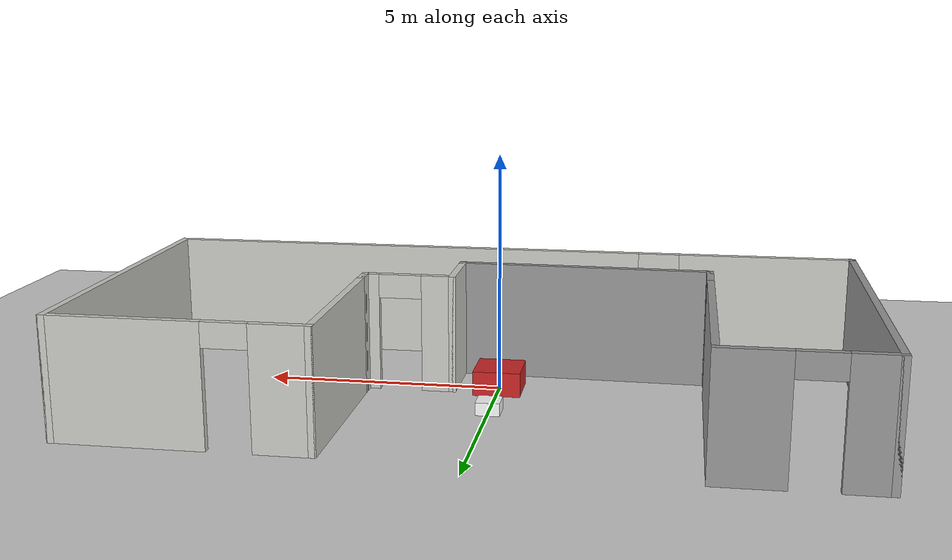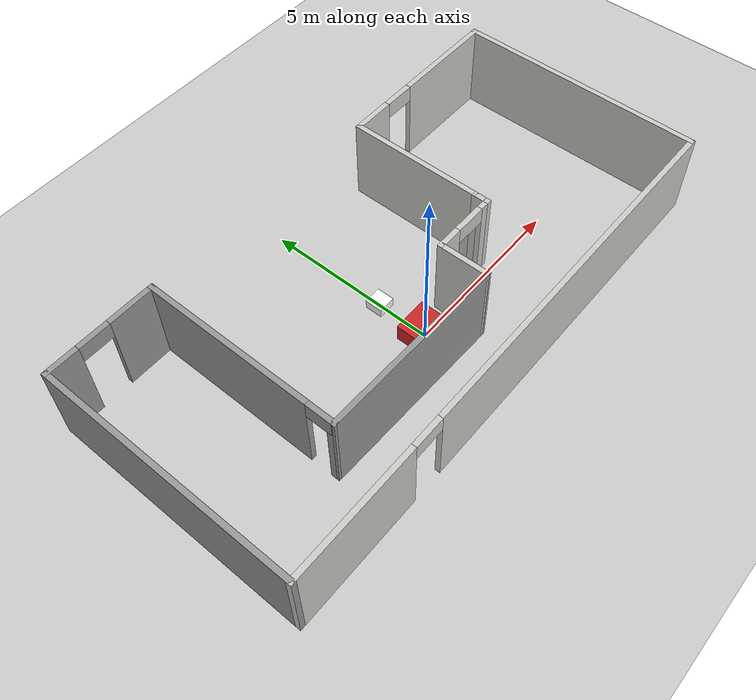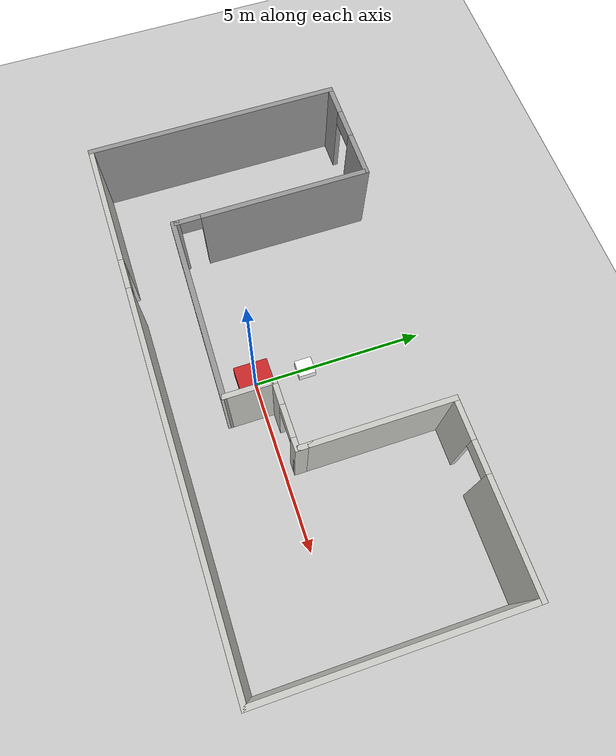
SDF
<sdf version="1.7">
 <world name="default">
  <light name="sun" type="directional">
   <pose>0 0 10 0 -0 0</pose>
   <diffuse>0.8 0.8 0.8 1</diffuse>
   <specular>0.2 0.2 0.2 1</specular>
   <attenuation>
    <range>1000</range>
    <constant>0.9</constant>
    <linear>0.01</linear>
    <quadratic>0.001</quadratic>
   </attenuation>
   <direction>-0.5 0.1 -0.9</direction>
   <spot><inner_angle>0</inner_angle><outer_angle>0</outer_angle><falloff>0</falloff></spot>
  </light>
  <model name="ground_plane">
   <static>1</static>
   <link name="link">
    <collision name="collision">
     <geometry><plane><normal>0 0 1</normal><size>100 100</size></plane></geometry>
     <surface>
      <contact><collide_bitmask>65535</collide_bitmask></contact>
      <friction><ode><mu>100</mu><mu2>50</mu2></ode></friction>
     </surface>
    </collision>
    <visual name="visual">
     <cast_shadows>0</cast_shadows>
     <geometry><plane><normal>0 0 1</normal><size>100 100</size></plane></geometry>
     <material>
      <script><uri>file://media/materials/scripts/gazebo.material</uri><name>Gazebo/Grey</name></script>
     </material>
    </visual>
   </link>
  </model>
  <gravity>0 0 -9.8</gravity>
  <magnetic_field>6e-06 2.3e-05 -4.2e-05</magnetic_field>
  <atmosphere type="adiabatic"/>
  <physics type="ode">
   <max_step_size>0.001</max_step_size>
   <real_time_factor>1</real_time_factor>
   <real_time_update_rate>1000</real_time_update_rate>
  </physics>
  <scene><ambient>0.4 0.4 0.4 1</ambient><background>0.7 0.7 0.7 1</background><shadows>1</shadows></scene>
  <spherical_coordinates>
   <surface_model>EARTH_WGS84</surface_model>
   <latitude_deg>0</latitude_deg>
   <longitude_deg>0</longitude_deg>
   <elevation>0</elevation>
   <heading_deg>0</heading_deg>
  </spherical_coordinates>
  <model name="walls_and_doors">
   <pose>0.228245 1.08358 0 0 -0 0</pose>
   <link name="Wall_0">
    <collision name="Wall_0_Collision">
     <geometry><box><size>1.5 0.15 2.5</size></box></geometry>
     <pose>0 0 1.25 0 -0 0</pose>
    </collision>
    <visual name="Wall_0_Visual">
     <pose>0 0 1.25 0 -0 0</pose>
     <geometry><box><size>1.5 0.15 2.5</size></box></geometry>
     <material>
      <script><uri>file://media/materials/scripts/gazebo.material</uri><name>Gazebo/CeilingTiled</name></script>
      <ambient>1 1 1 1</ambient>
     </material>
     <meta><layer>0</layer></meta>
    </visual>
    <pose>0.725 -1.45 0 0 -0 1.5708</pose>
   </link>
   <link name="Wall_1">
    <pose>1.65 -0.775 0 0 -0 0</pose>
    <visual name="Wall_1_Visual_0">
     <pose>-0.637296 0 1.25 0 -0 0</pose>
     <geometry><box><size>0.725409 0.15 2.5</size></box></geometry>
     <material>
      <script><uri>file://media/materials/scripts/gazebo.material</uri><name>Gazebo/CeilingTiled</name></script>
      <ambient>1 1 1 1</ambient>
     </material>
     <meta><layer>0</layer></meta>
    </visual>
    <collision name="Wall_1_Collision_0">
     <geometry><box><size>0.725409 0.15 2.5</size></box></geometry>
     <pose>-0.637296 0 1.25 0 -0 0</pose>
    </collision>
    <visual name="Wall_1_Visual_1">
     <pose>0.812704 0 1.25 0 -0 0</pose>
     <geometry><box><size>0.374591 0.15 2.5</size></box></geometry>
     <material>
      <script><uri>file://media/materials/scripts/gazebo.material</uri><name>Gazebo/CeilingTiled</name></script>
      <ambient>1 1 1 1</ambient>
     </material>
     <meta><layer>0</layer></meta>
    </visual>
    <collision name="Wall_1_Collision_1">
     <geometry><box><size>0.374591 0.15 2.5</size></box></geometry>
     <pose>0.812704 0 1.25 0 -0 0</pose>
    </collision>
    <visual name="Wall_1_Visual_2">
     <pose>0.175409 0 2.25 0 -0 0</pose>
     <geometry><box><size>0.9 0.15 0.5</size></box></geometry>
     <material>
      <script><uri>file://media/materials/scripts/gazebo.material</uri><name>Gazebo/CeilingTiled</name></script>
      <ambient>1 1 1 1</ambient>
     </material>
     <meta><layer>0</layer></meta>
    </visual>
    <collision name="Wall_1_Collision_2">
     <geometry><box><size>0.9 0.15 0.5</size></box></geometry>
     <pose>0.175409 0 2.25 0 -0 0</pose>
    </collision>
   </link>
   <link name="Wall_10">
    <pose>-6.125 3.675 0 0 -0 0</pose>
    <visual name="Wall_10_Visual_0">
     <pose>-1.14543 0 1.25 0 -0 0</pose>
     <geometry><box><size>0.959147 0.15 2.5</size></box></geometry>
     <material>
      <script><uri>file://media/materials/scripts/gazebo.material</uri><name>Gazebo/Grey</name></script>
      <ambient>1 1 1 1</ambient>
     </material>
     <meta><layer>0</layer></meta>
    </visual>
    <collision name="Wall_10_Collision_0">
     <geometry><box><size>0.959147 0.15 2.5</size></box></geometry>
     <pose>-1.14543 0 1.25 0 -0 0</pose>
    </collision>
    <visual name="Wall_10_Visual_1">
     <pose>0.929574 0 1.25 0 -0 0</pose>
     <geometry><box><size>1.39085 0.15 2.5</size></box></geometry>
     <material>
      <script><uri>file://media/materials/scripts/gazebo.material</uri><name>Gazebo/Grey</name></script>
      <ambient>1 1 1 1</ambient>
     </material>
     <meta><layer>0</layer></meta>
    </visual>
    <collision name="Wall_10_Collision_1">
     <geometry><box><size>1.39085 0.15 2.5</size></box></geometry>
     <pose>0.929574 0 1.25 0 -0 0</pose>
    </collision>
    <visual name="Wall_10_Visual_2">
     <pose>-0.215853 0 2.25 0 -0 0</pose>
     <geometry><box><size>0.9 0.15 0.5</size></box></geometry>
     <material>
      <script><uri>file://media/materials/scripts/gazebo.material</uri><name>Gazebo/Grey</name></script>
      <ambient>1 1 1 1</ambient>
     </material>
     <meta><layer>0</layer></meta>
    </visual>
    <collision name="Wall_10_Collision_2">
     <geometry><box><size>0.9 0.15 0.5</size></box></geometry>
     <pose>-0.215853 0 2.25 0 -0 0</pose>
    </collision>
   </link>
   <link name="Wall_11">
    <pose>-4.575 0.875 0 0 -0 -1.5708</pose>
    <visual name="Wall_11_Visual_0">
     <pose>-0.379798 0 1.25 0 -0 0</pose>
     <geometry><box><size>4.9904 0.15 2.5</size></box></geometry>
     <material>
      <script><uri>file://media/materials/scripts/gazebo.material</uri><name>Gazebo/Grey</name></script>
      <ambient>1 1 1 1</ambient>
     </material>
     <meta><layer>0</layer></meta>
    </visual>
    <collision name="Wall_11_Collision_0">
     <geometry><box><size>4.9904 0.15 2.5</size></box></geometry>
     <pose>-0.379798 0 1.25 0 -0 0</pose>
    </collision>
    <visual name="Wall_11_Visual_1">
     <pose>2.4952 0 2.25 0 -0 0</pose>
     <geometry><box><size>0.759596 0.15 0.5</size></box></geometry>
     <material>
      <script><uri>file://media/materials/scripts/gazebo.material</uri><name>Gazebo/Grey</name></script>
      <ambient>1 1 1 1</ambient>
     </material>
     <meta><layer>0</layer></meta>
    </visual>
    <collision name="Wall_11_Collision_1">
     <geometry><box><size>0.759596 0.15 0.5</size></box></geometry>
     <pose>2.4952 0 2.25 0 -0 0</pose>
    </collision>
   </link>
   <link name="Wall_12">
    <collision name="Wall_12_Collision">
     <geometry><box><size>0.25 0.15 2.5</size></box></geometry>
     <pose>0 0 1.25 0 -0 0</pose>
    </collision>
    <visual name="Wall_12_Visual">
     <pose>0 0 1.25 0 -0 0</pose>
     <geometry><box><size>0.25 0.15 2.5</size></box></geometry>
     <material>
      <script><uri>file://media/materials/scripts/gazebo.material</uri><name>Gazebo/Grey</name></script>
      <ambient>1 1 1 1</ambient>
     </material>
     <meta><layer>0</layer></meta>
    </visual>
    <pose>-4.575 -1.975 0 0 -0 -1.5708</pose>
   </link>
   <link name="Wall_13">
    <collision name="Wall_13_Collision">
     <geometry><box><size>5.45094 0.15 2.5</size></box></geometry>
     <pose>0 0 1.25 0 -0 0</pose>
    </collision>
    <visual name="Wall_13_Visual">
     <pose>0 0 1.25 0 -0 0</pose>
     <geometry><box><size>5.45094 0.15 2.5</size></box></geometry>
     <material>
      <script><uri>file://media/materials/scripts/gazebo.material</uri><name>Gazebo/Grey</name></script>
      <ambient>1 1 1 1</ambient>
     </material>
     <meta><layer>0</layer></meta>
    </visual>
    <pose>-1.925 -2.075 0 0 -0 -0.018866</pose>
   </link>
   <link name="Wall_2">
    <collision name="Wall_2_Collision">
     <geometry><box><size>0.5 0.15 2.5</size></box></geometry>
     <pose>0 0 1.25 0 -0 0</pose>
    </collision>
    <visual name="Wall_2_Visual">
     <pose>0 0 1.25 0 -0 0</pose>
     <geometry><box><size>0.5 0.15 2.5</size></box></geometry>
     <material>
      <script><uri>file://media/materials/scripts/gazebo.material</uri><name>Gazebo/CeilingTiled</name></script>
      <ambient>1 1 1 1</ambient>
     </material>
     <meta><layer>0</layer></meta>
    </visual>
    <pose>2.575 -0.6 0 0 -0 1.5708</pose>
   </link>
   <link name="Wall_3">
    <collision name="Wall_3_Collision">
     <geometry><box><size>0.15 0.15 2.5</size></box></geometry>
     <pose>0 0 1.25 0 -0 0</pose>
    </collision>
    <visual name="Wall_3_Visual">
     <pose>0 0 1.25 0 -0 0</pose>
     <geometry><box><size>0.15 0.15 2.5</size></box></geometry>
     <material>
      <script><uri>file://media/materials/scripts/gazebo.material</uri><name>Gazebo/CeilingTiled</name></script>
      <ambient>1 1 1 1</ambient>
     </material>
     <meta><layer>0</layer></meta>
    </visual>
    <pose>2.575 -0.425 0 0 -0 0</pose>
   </link>
   <link name="Wall_5">
    <collision name="Wall_5_Collision">
     <geometry><box><size>4 0.15 2.5</size></box></geometry>
     <pose>0 0 1.25 0 -0 0</pose>
    </collision>
    <visual name="Wall_5_Visual">
     <pose>0 0 1.25 0 -0 0</pose>
     <geometry><box><size>4 0.15 2.5</size></box></geometry>
     <material>
      <script><uri>file://media/materials/scripts/gazebo.material</uri><name>Gazebo/CeilingTiled</name></script>
      <ambient>1 1 1 1</ambient>
     </material>
     <meta><layer>0</layer></meta>
    </visual>
    <pose>2.575 1.5 0 0 -0 1.5708</pose>
   </link>
   <link name="Wall_6">
    <pose>5.125 3.425 0 0 -0 0</pose>
    <visual name="Wall_6_Visual_0">
     <pose>-2.01689 0 1.25 0 -0 0</pose>
     <geometry><box><size>1.21623 0.15 2.5</size></box></geometry>
     <material>
      <script><uri>file://media/materials/scripts/gazebo.material</uri><name>Gazebo/CeilingTiled</name></script>
      <ambient>1 1 1 1</ambient>
     </material>
     <meta><layer>0</layer></meta>
    </visual>
    <collision name="Wall_6_Collision_0">
     <geometry><box><size>1.21623 0.15 2.5</size></box></geometry>
     <pose>-2.01689 0 1.25 0 -0 0</pose>
    </collision>
    <visual name="Wall_6_Visual_1">
     <pose>1.05811 0 1.25 0 -0 0</pose>
     <geometry><box><size>3.13377 0.15 2.5</size></box></geometry>
     <material>
      <script><uri>file://media/materials/scripts/gazebo.material</uri><name>Gazebo/CeilingTiled</name></script>
      <ambient>1 1 1 1</ambient>
     </material>
     <meta><layer>0</layer></meta>
    </visual>
    <collision name="Wall_6_Collision_1">
     <geometry><box><size>3.13377 0.15 2.5</size></box></geometry>
     <pose>1.05811 0 1.25 0 -0 0</pose>
    </collision>
    <visual name="Wall_6_Visual_2">
     <pose>-0.958774 0 2.25 0 -0 0</pose>
     <geometry><box><size>0.9 0.15 0.5</size></box></geometry>
     <material>
      <script><uri>file://media/materials/scripts/gazebo.material</uri><name>Gazebo/CeilingTiled</name></script>
      <ambient>1 1 1 1</ambient>
     </material>
     <meta><layer>0</layer></meta>
    </visual>
    <collision name="Wall_6_Collision_2">
     <geometry><box><size>0.9 0.15 0.5</size></box></geometry>
     <pose>-0.958774 0 2.25 0 -0 0</pose>
    </collision>
   </link>
   <link name="Wall_7">
    <collision name="Wall_7_Collision">
     <geometry><box><size>7.25 0.15 2.5</size></box></geometry>
     <pose>0 0 1.25 0 -0 0</pose>
    </collision>
    <visual name="Wall_7_Visual">
     <pose>0 0 1.25 0 -0 0</pose>
     <geometry><box><size>7.25 0.15 2.5</size></box></geometry>
     <material>
      <script><uri>file://media/materials/scripts/gazebo.material</uri><name>Gazebo/CeilingTiled</name></script>
      <ambient>1 1 1 1</ambient>
     </material>
     <meta><layer>0</layer></meta>
    </visual>
    <pose>7.675 -0.125 0 0 -0 -1.5708</pose>
   </link>
   <link name="Wall_8">
    <pose>0 -3.675 0 0 -0 3.14159</pose>
    <visual name="Wall_8_Visual_0">
     <pose>-2.36598 0 1.25 0 -0 0</pose>
     <geometry><box><size>10.768 0.15 2.5</size></box></geometry>
     <material>
      <script><uri>file://media/materials/scripts/gazebo.material</uri><name>Gazebo/CeilingTiled</name></script>
      <ambient>1 1 1 1</ambient>
     </material>
     <meta><layer>0</layer></meta>
    </visual>
    <collision name="Wall_8_Collision_0">
     <geometry><box><size>10.768 0.15 2.5</size></box></geometry>
     <pose>-2.36598 0 1.25 0 -0 0</pose>
    </collision>
    <visual name="Wall_8_Visual_1">
     <pose>5.83401 0 1.25 0 -0 0</pose>
     <geometry><box><size>3.83197 0.15 2.5</size></box></geometry>
     <material>
      <script><uri>file://media/materials/scripts/gazebo.material</uri><name>Gazebo/CeilingTiled</name></script>
      <ambient>1 1 1 1</ambient>
     </material>
     <meta><layer>0</layer></meta>
    </visual>
    <collision name="Wall_8_Collision_1">
     <geometry><box><size>3.83197 0.15 2.5</size></box></geometry>
     <pose>5.83401 0 1.25 0 -0 0</pose>
    </collision>
    <visual name="Wall_8_Visual_2">
     <pose>3.46803 0 2.25 0 -0 0</pose>
     <geometry><box><size>0.9 0.15 0.5</size></box></geometry>
     <material>
      <script><uri>file://media/materials/scripts/gazebo.material</uri><name>Gazebo/CeilingTiled</name></script>
      <ambient>1 1 1 1</ambient>
     </material>
     <meta><layer>0</layer></meta>
    </visual>
    <collision name="Wall_8_Collision_2">
     <geometry><box><size>0.9 0.15 0.5</size></box></geometry>
     <pose>3.46803 0 2.25 0 -0 0</pose>
    </collision>
   </link>
   <link name="Wall_9">
    <collision name="Wall_9_Collision">
     <geometry><box><size>7.5 0.15 2.5</size></box></geometry>
     <pose>0 0 1.25 0 -0 0</pose>
    </collision>
    <visual name="Wall_9_Visual">
     <pose>0 0 1.25 0 -0 0</pose>
     <geometry><box><size>7.5 0.15 2.5</size></box></geometry>
     <material>
      <script><uri>file://media/materials/scripts/gazebo.material</uri><name>Gazebo/Grey</name></script>
      <ambient>1 1 1 1</ambient>
     </material>
     <meta><layer>0</layer></meta>
    </visual>
    <pose>-7.675 0 0 0 -0 1.5708</pose>
   </link>
   <static>1</static>
  </model>
  <model name="your_model_name">
   <link name="New_Box_Link">
    <collision name="New_Box_Collision">
     <geometry><box><size>0.5 0.5 0.5</size></box></geometry>
     <pose>0 1.5 0 0 0 0</pose>
    </collision>
    <visual name="New_Box_Visual">
     <pose>0 1.5 0 0 1.57 1.57</pose>
     <geometry><box><size>0.5 0.5 0.5</size></box></geometry>
     <material>
      <script>
       <uri>model://materials/scripts/</uri>
       <uri>model://materials/textures/</uri>
       <name>MyGroundPlane/Image</name>
      </script>
      <ambient>1 1 1 1</ambient>
     </material>
    </visual>
   </link>
  </model>
  <model name="red_box_model">
   <link name="red_box_link">
    <visual name="red_box_visual">
     <geometry><box><size>1 1 1</size></box></geometry>
     <material>
      <script><uri>file://media/materials/scripts/gazebo.material</uri><name>Gazebo/Red</name></script>
      <ambient>1 0 0 1</ambient>
     </material>
    </visual>
   </link>
  </model>
 </world>
</sdf>
